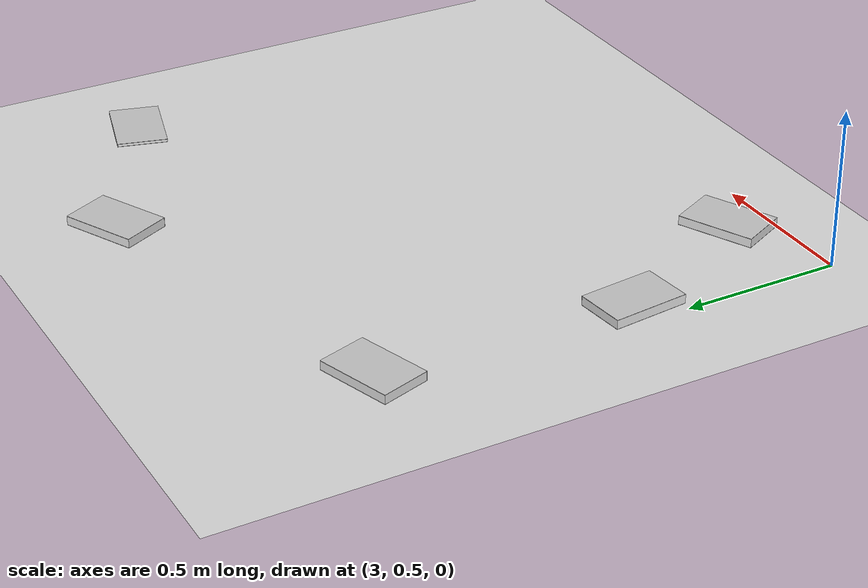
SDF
<sdf version="1.6">
 <world name="default">
  <model name="ground_plane">
   <static>1</static>
   <link name="link">
    <collision name="collision">
     <geometry><plane><normal>0 0 1</normal><size>100 100</size></plane></geometry>
     <surface><friction><ode><mu>1</mu><mu2>1</mu2></ode></friction></surface>
    </collision>
    <visual name="visual">
     <cast_shadows>0</cast_shadows>
     <geometry><plane><normal>0 0 1</normal><size>100 100</size></plane></geometry>
     <material>
      <script><uri>file://media/materials/scripts/gazebo.material</uri><name>Gazebo/Grey</name></script>
     </material>
    </visual>
    <velocity_decay><linear>0</linear><angular>0</angular></velocity_decay>
   </link>
  </model>
  <model name="book_8">
   <link name="cover">
    <pose>0 -0.000108 0.005 0 -0 0</pose>
    <visual name="visual">
     <geometry><box><size>0.245 0.16 0.01</size></box></geometry>
     <material>
      <script>
       <uri>model://book_8/materials/scripts</uri>
       <uri>model://book_8/materials/textures</uri>
       <name>book_8</name>
      </script>
     </material>
    </visual>
    <collision name="collision"><geometry><box><size>0.245 0.16 0.01</size></box></geometry></collision>
   </link>
   <link name="page">
    <pose>0 0.000608 0.005 0 -0 0</pose>
    <visual name="visual">
     <geometry><box><size>0.24502 0.15862 0.008</size></box></geometry>
     <material>
      <lighting>1</lighting>
      <ambient>1 1 1 1</ambient>
      <diffuse>1 1 1 1</diffuse>
      <specular>0.01 0.01 0.01 1</specular>
      <emissive>0 0 0 1</emissive>
      <shader type="vertex"><normal_map>__default__</normal_map></shader>
     </material>
    </visual>
    <collision name="collision"><geometry><box><size>0.245 0.16 0.008</size></box></geometry></collision>
   </link>
   <static>1</static>
   <pose>4.76567 1.94268 0.02031 0 -0 2.87142</pose>
  </model>
  <model name="book_1">
   <link name="cover">
    <pose>0 -0.000108 0.015405 0 -0 0</pose>
    <visual name="visual">
     <geometry><box><size>0.245 0.16 0.03</size></box></geometry>
     <material>
      <script>
       <uri>model://book_1/materials/scripts</uri>
       <uri>model://book_1/materials/textures</uri>
       <name>book_1</name>
      </script>
     </material>
    </visual>
    <collision name="collision"><geometry><box><size>0.245 0.16 0.03</size></box></geometry></collision>
   </link>
   <link name="page">
    <pose>0 0.000608 0.015405 0 -0 0</pose>
    <visual name="visual">
     <geometry><box><size>0.24502 0.15862 0.028</size></box></geometry>
     <material>
      <lighting>1</lighting>
      <ambient>1 1 1 1</ambient>
      <diffuse>1 1 1 1</diffuse>
      <specular>0.01 0.01 0.01 1</specular>
      <emissive>0 0 0 1</emissive>
      <shader type="vertex"><normal_map>__default__</normal_map></shader>
     </material>
    </visual>
    <collision name="collision"><geometry><box><size>0.245 0.16 0.03</size></box></geometry></collision>
   </link>
   <static>1</static>
   <pose>3.09288 1.95422 0.023482 0 -0 0.308431</pose>
  </model>
  <model name="book_17">
   <link name="cover">
    <pose>0 -0.000108 0.015405 0 -0 0</pose>
    <visual name="visual">
     <geometry><box><size>0.245 0.16 0.03</size></box></geometry>
     <material>
      <script>
       <uri>model://book_17/materials/scripts</uri>
       <uri>model://book_17/materials/textures</uri>
       <name>book_17</name>
      </script>
     </material>
    </visual>
    <collision name="collision"><geometry><box><size>0.245 0.16 0.03</size></box></geometry></collision>
   </link>
   <link name="page">
    <pose>0 0.000608 0.015405 0 -0 0</pose>
    <visual name="visual">
     <geometry><box><size>0.24502 0.15862 0.028</size></box></geometry>
     <material>
      <lighting>1</lighting>
      <ambient>1 1 1 1</ambient>
      <diffuse>1 1 1 1</diffuse>
      <specular>0.01 0.01 0.01 1</specular>
      <emissive>0 0 0 1</emissive>
      <shader type="vertex"><normal_map>__default__</normal_map></shader>
     </material>
    </visual>
    <collision name="collision"><geometry><box><size>0.245 0.16 0.03</size></box></geometry></collision>
   </link>
   <static>1</static>
   <pose>3.06474 1.14609 0.023426 0 -0 1.67764</pose>
  </model>
  <model name="book_2">
   <link name="cover">
    <pose>0 -0.000108 0.015405 0 -0 0</pose>
    <visual name="visual">
     <geometry><box><size>0.245 0.16 0.03</size></box></geometry>
     <material>
      <script>
       <uri>model://book_2/materials/scripts</uri>
       <uri>model://book_2/materials/textures</uri>
       <name>book_2</name>
      </script>
     </material>
    </visual>
    <collision name="collision"><geometry><box><size>0.245 0.16 0.03</size></box></geometry></collision>
   </link>
   <link name="page">
    <pose>0 0.000608 0.015405 0 -0 0</pose>
    <visual name="visual">
     <geometry><box><size>0.24502 0.15862 0.028</size></box></geometry>
     <material>
      <lighting>1</lighting>
      <ambient>1 1 1 1</ambient>
      <diffuse>1 1 1 1</diffuse>
      <specular>0.01 0.01 0.01 1</specular>
      <emissive>0 0 0 1</emissive>
      <shader type="vertex"><normal_map>__default__</normal_map></shader>
     </material>
    </visual>
    <collision name="collision"><geometry><box><size>0.245 0.16 0.03</size></box></geometry></collision>
   </link>
   <static>1</static>
   <pose>3.31106 0.651772 0.0225 0 -0 0.448685</pose>
  </model>
  <model name="book_18">
   <link name="cover">
    <pose>0 -0.000108 0.015405 0 -0 0</pose>
    <visual name="visual">
     <geometry><box><size>0.245 0.16 0.03</size></box></geometry>
     <material>
      <script>
       <uri>model://book_18/materials/scripts</uri>
       <uri>model://book_18/materials/textures</uri>
       <name>book_18</name>
      </script>
     </material>
    </visual>
    <collision name="collision"><geometry><box><size>0.245 0.16 0.03</size></box></geometry></collision>
   </link>
   <link name="page">
    <pose>0 0.000608 0.015405 0 -0 0</pose>
    <visual name="visual">
     <geometry><box><size>0.24502 0.15862 0.028</size></box></geometry>
     <material>
      <lighting>1</lighting>
      <ambient>1 1 1 1</ambient>
      <diffuse>1 1 1 1</diffuse>
      <specular>0.01 0.01 0.01 1</specular>
      <emissive>0 0 0 1</emissive>
      <shader type="vertex"><normal_map>__default__</normal_map></shader>
     </material>
    </visual>
    <collision name="collision"><geometry><box><size>0.245 0.16 0.03</size></box></geometry></collision>
   </link>
   <static>1</static>
   <pose>4.19314 2.2481 0.020489 0 -0 0.455931</pose>
  </model>
 </world>
</sdf>
